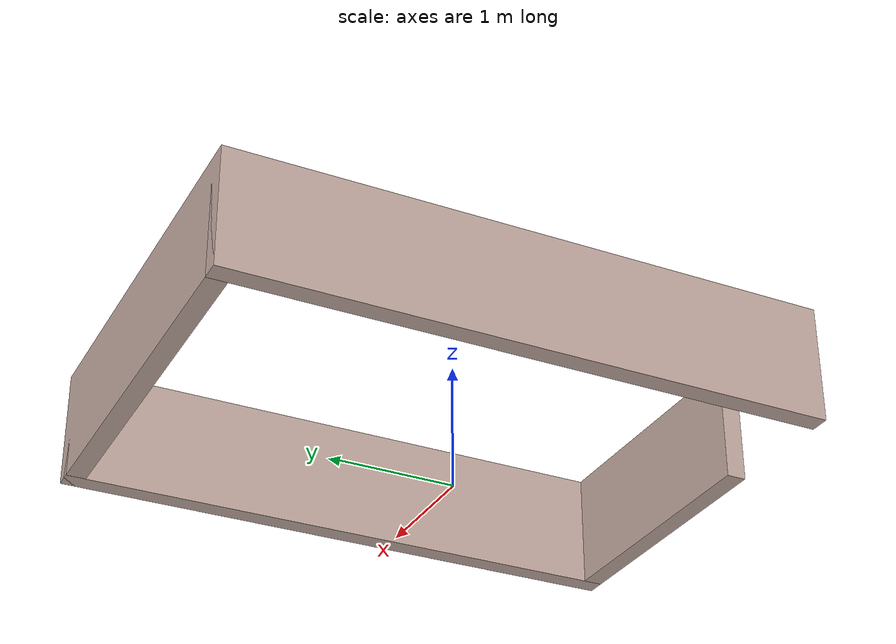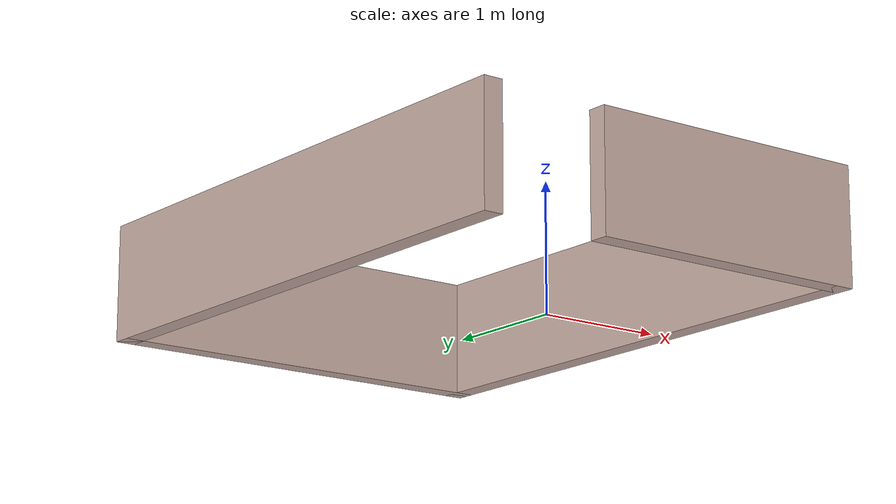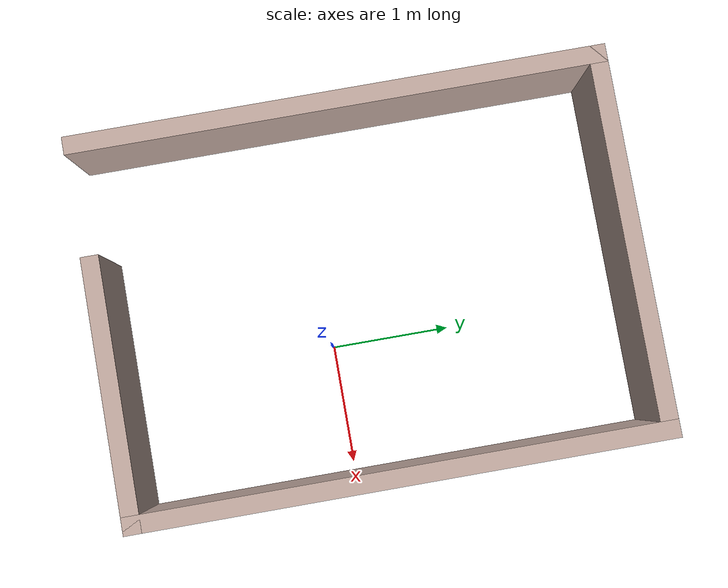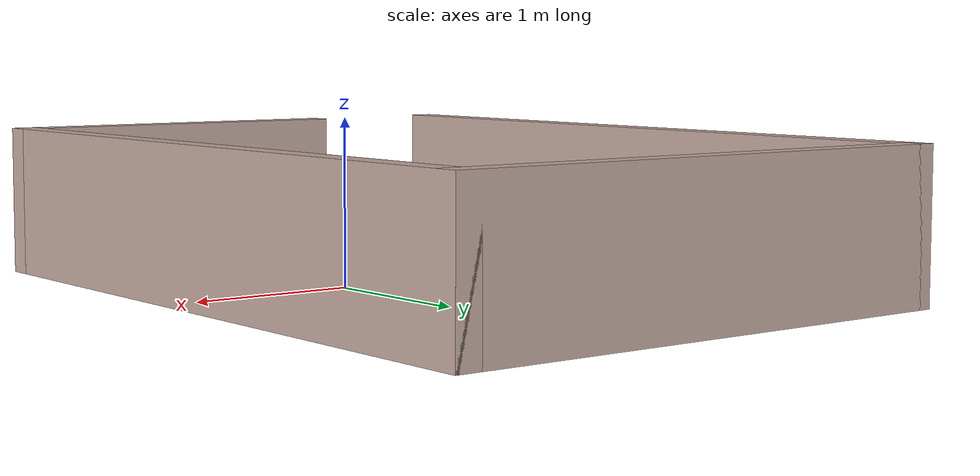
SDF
<?xml version='1.0'?>
<sdf version='1.7'>
  <model name='Untitled'>
    <pose>-0.404 0.374 0 0 -0 0</pose>
    <link name='Wall_0'>
      <collision name='Wall_0_Collision'>
        <geometry>
          <box>
            <size>4.5 0.15 0.9</size>
          </box>
        </geometry>
        <pose>0 0 0.45 0 -0 0</pose>
      </collision>
      <visual name='Wall_0_Visual'>
        <pose>0 0 0.45 0 -0 0</pose>
        <geometry>
          <box>
            <size>4.5 0.15 0.9</size>
          </box>
        </geometry>
        <material>
          <script>
            <uri>file://media/materials/scripts/gazebo.material</uri>
            <name>Gazebo/Grey</name>
          </script>
          <ambient>0.760784 0.662745 0.627451 1</ambient>
        </material>
        <meta>
          <layer>0</layer>
        </meta>
      </visual>
      <pose>-1.55 -0 0 0 -0 1.5708</pose>
    </link>
    <link name='Wall_1'>
      <collision name='Wall_1_Collision'>
        <geometry>
          <box>
            <size>3.25 0.15 0.9</size>
          </box>
        </geometry>
        <pose>0 0 0.45 0 -0 0</pose>
      </collision>
      <visual name='Wall_1_Visual'>
        <pose>0 0 0.45 0 -0 0</pose>
        <geometry>
          <box>
            <size>3.25 0.15 0.9</size>
          </box>
        </geometry>
        <material>
          <script>
            <uri>file://media/materials/scripts/gazebo.material</uri>
            <name>Gazebo/Grey</name>
          </script>
          <ambient>0.760784 0.662745 0.627451 1</ambient>
        </material>
        <meta>
          <layer>0</layer>
        </meta>
      </visual>
      <pose>-0 2.175 0 0 -0 0</pose>
    </link>
    <link name='Wall_2'>
      <collision name='Wall_2_Collision'>
        <geometry>
          <box>
            <size>4.5 0.15 0.9</size>
          </box>
        </geometry>
        <pose>0 0 0.45 0 -0 0</pose>
      </collision>
      <visual name='Wall_2_Visual'>
        <pose>0 0 0.45 0 -0 0</pose>
        <geometry>
          <box>
            <size>4.5 0.15 0.9</size>
          </box>
        </geometry>
        <material>
          <script>
            <uri>file://media/materials/scripts/gazebo.material</uri>
            <name>Gazebo/Grey</name>
          </script>
          <ambient>0.760784 0.662745 0.627451 1</ambient>
        </material>
        <meta>
          <layer>0</layer>
        </meta>
      </visual>
      <pose>1.55 -0 0 0 -0 -1.5708</pose>
    </link>
    <link name='Wall_3'>
      <collision name='Wall_3_Collision'>
        <geometry>
          <box>
            <size>2.25 0.15 0.9</size>
          </box>
        </geometry>
        <pose>0 0 0.45 0 -0 0</pose>
      </collision>
      <visual name='Wall_3_Visual'>
        <pose>0 0 0.45 0 -0 0</pose>
        <geometry>
          <box>
            <size>2.25 0.15 0.9</size>
          </box>
        </geometry>
        <material>
          <script>
            <uri>file://media/materials/scripts/gazebo.material</uri>
            <name>Gazebo/Grey</name>
          </script>
          <ambient>0.760784 0.662745 0.627451 1</ambient>
        </material>
        <meta>
          <layer>0</layer>
        </meta>
      </visual>
      <pose>0.5 -2.175 0 0 -0 3.14159</pose>
    </link>
    <static>1</static>
  </model>
</sdf>
